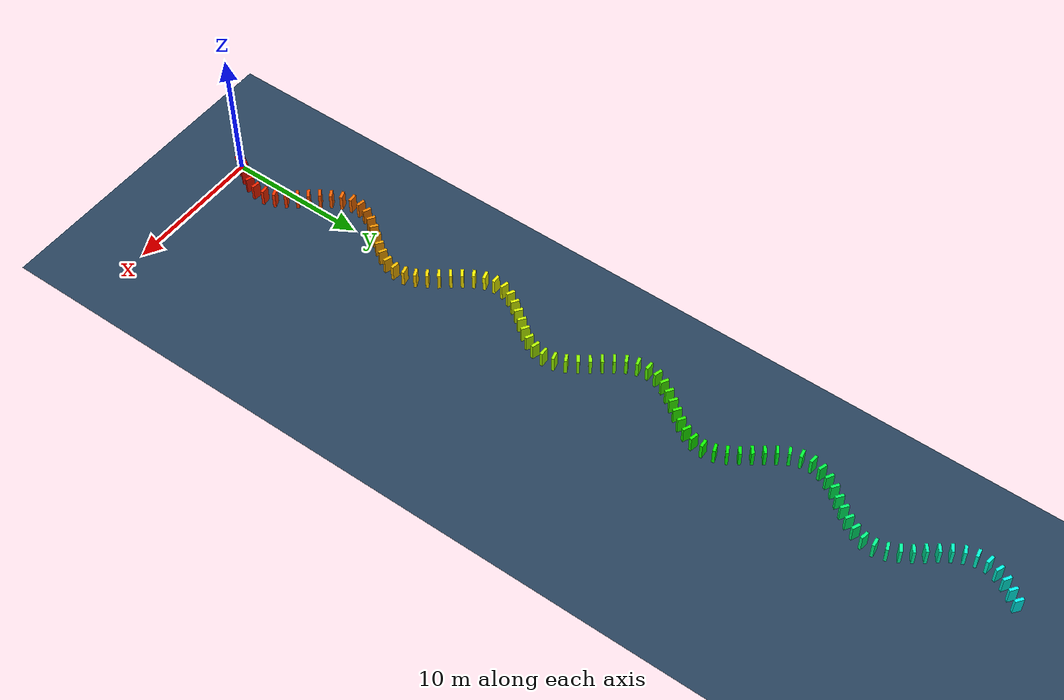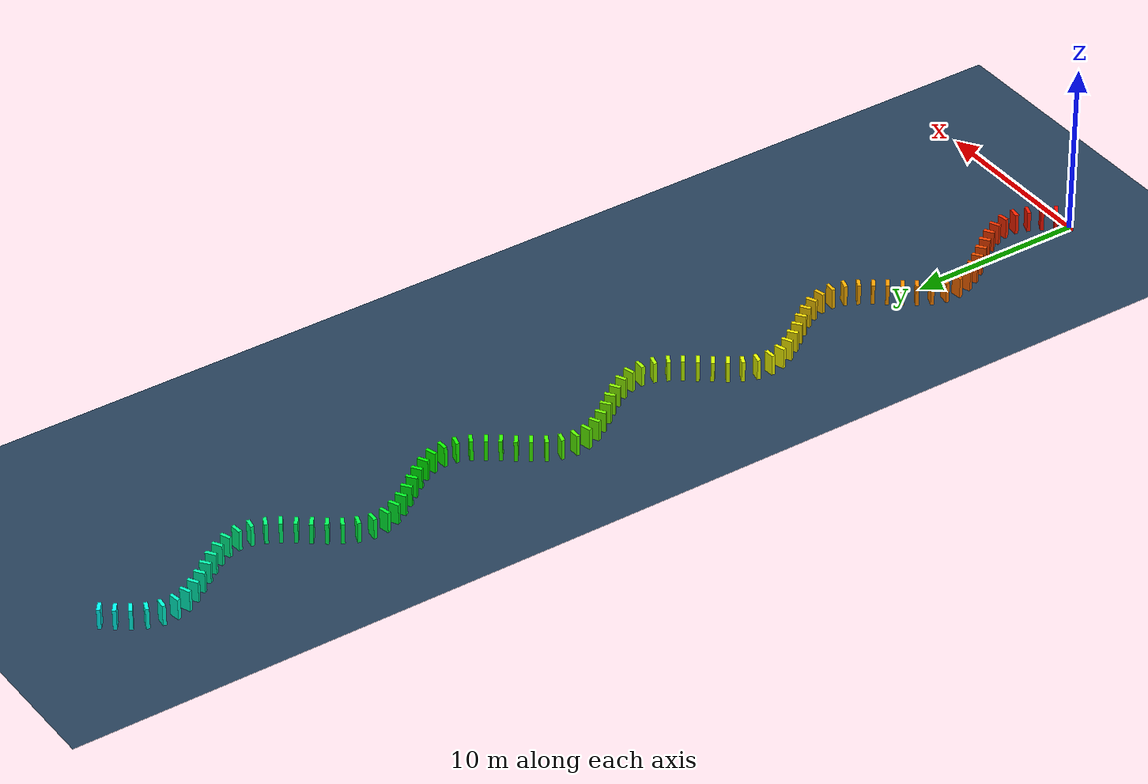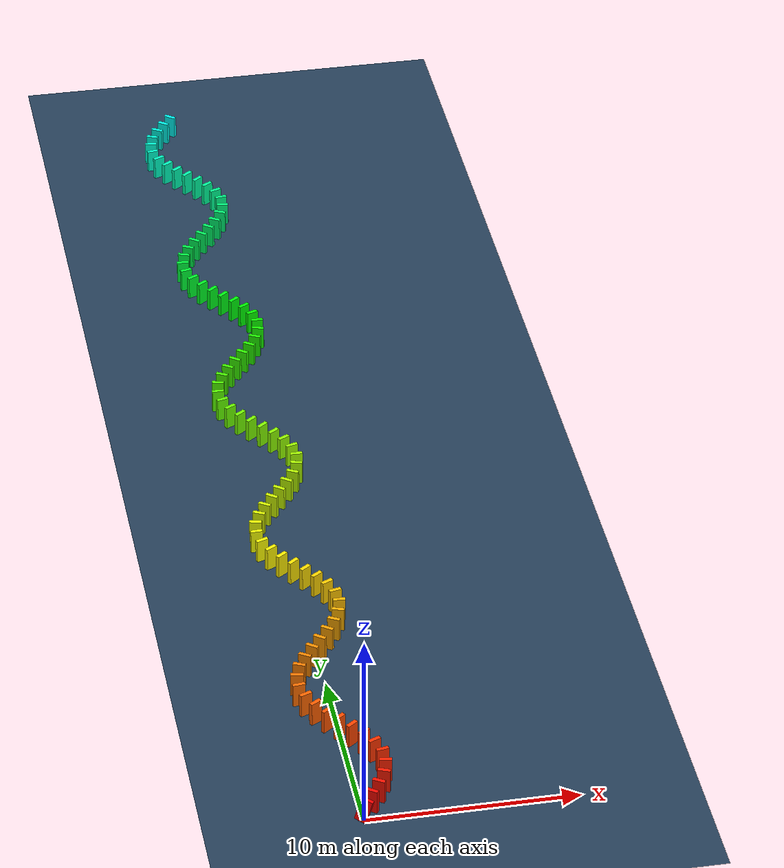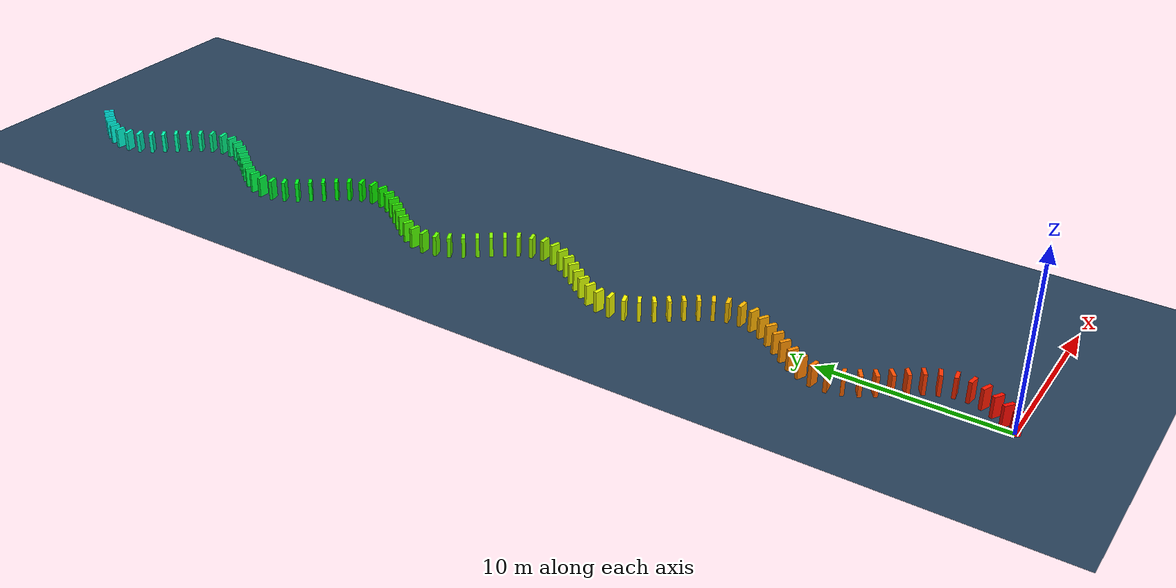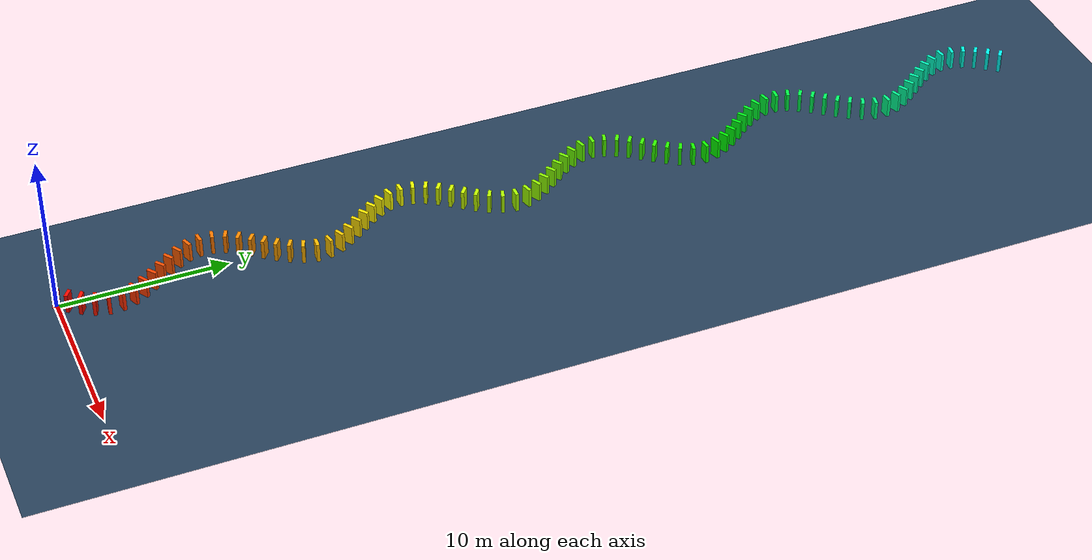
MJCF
<mujoco>
  <visual>
    <headlight diffuse="0.6 0.6 0.6" ambient="0.1 0.1 0.1" specular="0 0 0"/>
    <rgba haze="0.15 0.25 0.35 1"/>
    <global azimuth="120" elevation="-20"/>
  </visual>
  <asset>
    <texture type="skybox" builtin="gradient" rgb1="0.3 0.5 0.7" rgb2="0 0 0" width="512" height="3072"/>
    <texture type="2d" name="groundplane" builtin="checker" mark="edge" rgb1="0.2 0.3 0.4" rgb2="0.1 0.2 0.3" markrgb="0.8 0.8 0.8" width="300" height="300"/>
    <material name="groundplane" texture="groundplane" texuniform="true" texrepeat="5 5" reflectance="0.2"/>
  </asset>
  <worldbody>
    <light pos="0 0 1.5" dir="0 0 -1" directional="true"/>
    <geom name="floor" size="0 0 0.05" type="plane" material="groundplane"/>
    <body pos="0.0000 0.0000 0.6000" euler="0 15.0 52.3">
      <geom type="box" size="0.1000 0.3000 0.6000" rgba="1.000 0.000 0.000 1"/>
      <freejoint/>
    </body>
    <body pos="0.4692 0.6076 0.6000" euler="0 0.0 53.8">
      <geom type="box" size="0.1000 0.3000 0.6000" rgba="1.000 0.034 0.000 1"/>
      <freejoint/>
    </body>
    <body pos="0.9064 1.2393 0.6000" euler="0 0.0 58.7">
      <geom type="box" size="0.1000 0.3000 0.6000" rgba="1.000 0.067 0.000 1"/>
      <freejoint/>
    </body>
    <body pos="1.2655 1.9177 0.6000" euler="0 0.0 68.1">
      <geom type="box" size="0.1000 0.3000 0.6000" rgba="1.000 0.101 0.000 1"/>
      <freejoint/>
    </body>
    <body pos="1.4756 2.6547 0.6000" euler="0 0.0 82.5">
      <geom type="box" size="0.1000 0.3000 0.6000" rgba="1.000 0.134 0.000 1"/>
      <freejoint/>
    </body>
    <body pos="1.4639 3.4199 0.6000" euler="0 0.0 99.1">
      <geom type="box" size="0.1000 0.3000 0.6000" rgba="1.000 0.168 0.000 1"/>
      <freejoint/>
    </body>
    <body pos="1.2355 4.1515 0.6000" euler="0 0.0 113.1">
      <geom type="box" size="0.1000 0.3000 0.6000" rgba="1.000 0.201 0.000 1"/>
      <freejoint/>
    </body>
    <body pos="0.8661 4.8245 0.6000" euler="0 0.0 122.0">
      <geom type="box" size="0.1000 0.3000 0.6000" rgba="1.000 0.235 0.000 1"/>
      <freejoint/>
    </body>
    <body pos="0.4240 5.4527 0.6000" euler="0 0.0 126.5">
      <geom type="box" size="0.1000 0.3000 0.6000" rgba="1.000 0.268 0.000 1"/>
      <freejoint/>
    </body>
    <body pos="-0.0470 6.0599 0.6000" euler="0 0.0 127.7">
      <geom type="box" size="0.1000 0.3000 0.6000" rgba="1.000 0.302 0.000 1"/>
      <freejoint/>
    </body>
    <body pos="-0.5150 6.6694 0.6000" euler="0 0.0 125.9">
      <geom type="box" size="0.1000 0.3000 0.6000" rgba="1.000 0.335 0.000 1"/>
      <freejoint/>
    </body>
    <body pos="-0.9469 7.3047 0.6000" euler="0 0.0 120.6">
      <geom type="box" size="0.1000 0.3000 0.6000" rgba="1.000 0.369 0.000 1"/>
      <freejoint/>
    </body>
    <body pos="-1.2947 7.9889 0.6000" euler="0 0.0 110.7">
      <geom type="box" size="0.1000 0.3000 0.6000" rgba="1.000 0.402 0.000 1"/>
      <freejoint/>
    </body>
    <body pos="-1.4851 8.7310 0.6000" euler="0 0.0 95.9">
      <geom type="box" size="0.1000 0.3000 0.6000" rgba="1.000 0.436 0.000 1"/>
      <freejoint/>
    </body>
    <body pos="-1.4498 9.4955 0.6000" euler="0 0.0 79.3">
      <geom type="box" size="0.1000 0.3000 0.6000" rgba="1.000 0.469 0.000 1"/>
      <freejoint/>
    </body>
    <body pos="-1.2035 10.2215 0.6000" euler="0 0.0 65.8">
      <geom type="box" size="0.1000 0.3000 0.6000" rgba="1.000 0.503 0.000 1"/>
      <freejoint/>
    </body>
    <body pos="-0.8242 10.8890 0.6000" euler="0 0.0 57.4">
      <geom type="box" size="0.1000 0.3000 0.6000" rgba="1.000 0.536 0.000 1"/>
      <freejoint/>
    </body>
    <body pos="-0.3775 11.5141 0.6000" euler="0 0.0 53.3">
      <geom type="box" size="0.1000 0.3000 0.6000" rgba="1.000 0.570 0.000 1"/>
      <freejoint/>
    </body>
    <body pos="0.0945 12.1204 0.6000" euler="0 0.0 52.4">
      <geom type="box" size="0.1000 0.3000 0.6000" rgba="1.000 0.603 0.000 1"/>
      <freejoint/>
    </body>
    <body pos="0.5605 12.7314 0.6000" euler="0 0.0 54.5">
      <geom type="box" size="0.1000 0.3000 0.6000" rgba="1.000 0.637 0.000 1"/>
      <freejoint/>
    </body>
    <body pos="0.9865 13.3707 0.6000" euler="0 0.0 60.2">
      <geom type="box" size="0.1000 0.3000 0.6000" rgba="1.000 0.670 0.000 1"/>
      <freejoint/>
    </body>
    <body pos="1.3222 14.0607 0.6000" euler="0 0.0 70.6">
      <geom type="box" size="0.1000 0.3000 0.6000" rgba="1.000 0.704 0.000 1"/>
      <freejoint/>
    </body>
    <body pos="1.4924 14.8076 0.6000" euler="0 0.0 85.8">
      <geom type="box" size="0.1000 0.3000 0.6000" rgba="1.000 0.737 0.000 1"/>
      <freejoint/>
    </body>
    <body pos="1.4335 15.5707 0.6000" euler="0 0.0 102.3">
      <geom type="box" size="0.1000 0.3000 0.6000" rgba="1.000 0.771 0.000 1"/>
      <freejoint/>
    </body>
    <body pos="1.1702 16.2908 0.6000" euler="0 0.0 115.2">
      <geom type="box" size="0.1000 0.3000 0.6000" rgba="1.000 0.804 0.000 1"/>
      <freejoint/>
    </body>
    <body pos="0.7817 16.9531 0.6000" euler="0 0.0 123.2">
      <geom type="box" size="0.1000 0.3000 0.6000" rgba="1.000 0.838 0.000 1"/>
      <freejoint/>
    </body>
    <body pos="0.3309 17.5752 0.6000" euler="0 0.0 127.0">
      <geom type="box" size="0.1000 0.3000 0.6000" rgba="1.000 0.872 0.000 1"/>
      <freejoint/>
    </body>
    <body pos="-0.1419 18.1810 0.6000" euler="0 0.0 127.5">
      <geom type="box" size="0.1000 0.3000 0.6000" rgba="1.000 0.905 0.000 1"/>
      <freejoint/>
    </body>
    <body pos="-0.6056 18.7937 0.6000" euler="0 0.0 125.1">
      <geom type="box" size="0.1000 0.3000 0.6000" rgba="1.000 0.939 0.000 1"/>
      <freejoint/>
    </body>
    <body pos="-1.0252 19.4371 0.6000" euler="0 0.0 119.0">
      <geom type="box" size="0.1000 0.3000 0.6000" rgba="1.000 0.972 0.000 1"/>
      <freejoint/>
    </body>
    <body pos="-1.3481 20.1332 0.6000" euler="0 0.0 108.1">
      <geom type="box" size="0.1000 0.3000 0.6000" rgba="0.994 1.000 0.000 1"/>
      <freejoint/>
    </body>
    <body pos="-1.4973 20.8844 0.6000" euler="0 0.0 92.5">
      <geom type="box" size="0.1000 0.3000 0.6000" rgba="0.961 1.000 0.000 1"/>
      <freejoint/>
    </body>
    <body pos="-1.4152 21.6454 0.6000" euler="0 0.0 76.2">
      <geom type="box" size="0.1000 0.3000 0.6000" rgba="0.927 1.000 0.000 1"/>
      <freejoint/>
    </body>
    <body pos="-1.1357 22.3596 0.6000" euler="0 0.0 63.7">
      <geom type="box" size="0.1000 0.3000 0.6000" rgba="0.894 1.000 0.000 1"/>
      <freejoint/>
    </body>
    <body pos="-0.7386 23.0168 0.6000" euler="0 0.0 56.3">
      <geom type="box" size="0.1000 0.3000 0.6000" rgba="0.860 1.000 0.000 1"/>
      <freejoint/>
    </body>
    <body pos="-0.2840 23.6362 0.6000" euler="0 0.0 52.9">
      <geom type="box" size="0.1000 0.3000 0.6000" rgba="0.827 1.000 0.000 1"/>
      <freejoint/>
    </body>
    <body pos="0.1893 24.2416 0.6000" euler="0 0.0 52.6">
      <geom type="box" size="0.1000 0.3000 0.6000" rgba="0.793 1.000 0.000 1"/>
      <freejoint/>
    </body>
    <body pos="0.6503 24.8563 0.6000" euler="0 0.0 55.3">
      <geom type="box" size="0.1000 0.3000 0.6000" rgba="0.760 1.000 0.000 1"/>
      <freejoint/>
    </body>
    <body pos="1.0630 25.5041 0.6000" euler="0 0.0 61.9">
      <geom type="box" size="0.1000 0.3000 0.6000" rgba="0.726 1.000 0.000 1"/>
      <freejoint/>
    </body>
    <body pos="1.3723 26.2062 0.6000" euler="0 0.0 73.3">
      <geom type="box" size="0.1000 0.3000 0.6000" rgba="0.693 1.000 0.000 1"/>
      <freejoint/>
    </body>
    <body pos="1.4997 26.9612 0.6000" euler="0 0.0 89.1">
      <geom type="box" size="0.1000 0.3000 0.6000" rgba="0.659 1.000 0.000 1"/>
      <freejoint/>
    </body>
    <body pos="1.3948 27.7196 0.6000" euler="0 0.0 105.2">
      <geom type="box" size="0.1000 0.3000 0.6000" rgba="0.626 1.000 0.000 1"/>
      <freejoint/>
    </body>
    <body pos="1.1000 28.4277 0.6000" euler="0 0.0 117.2">
      <geom type="box" size="0.1000 0.3000 0.6000" rgba="0.592 1.000 0.000 1"/>
      <freejoint/>
    </body>
    <body pos="0.6949 29.0801 0.6000" euler="0 0.0 124.2">
      <geom type="box" size="0.1000 0.3000 0.6000" rgba="0.559 1.000 0.000 1"/>
      <freejoint/>
    </body>
    <body pos="0.2369 29.6971 0.6000" euler="0 0.0 127.3">
      <geom type="box" size="0.1000 0.3000 0.6000" rgba="0.525 1.000 0.000 1"/>
      <freejoint/>
    </body>
    <body pos="-0.2365 30.3023 0.6000" euler="0 0.0 127.3">
      <geom type="box" size="0.1000 0.3000 0.6000" rgba="0.492 1.000 0.000 1"/>
      <freejoint/>
    </body>
    <body pos="-0.6945 30.9193 0.6000" euler="0 0.0 124.2">
      <geom type="box" size="0.1000 0.3000 0.6000" rgba="0.458 1.000 0.000 1"/>
      <freejoint/>
    </body>
    <body pos="-1.0997 31.5717 0.6000" euler="0 0.0 117.2">
      <geom type="box" size="0.1000 0.3000 0.6000" rgba="0.425 1.000 0.000 1"/>
      <freejoint/>
    </body>
    <body pos="-1.3946 32.2798 0.6000" euler="0 0.0 105.3">
      <geom type="box" size="0.1000 0.3000 0.6000" rgba="0.391 1.000 0.000 1"/>
      <freejoint/>
    </body>
    <body pos="-1.4997 33.0382 0.6000" euler="0 0.0 89.2">
      <geom type="box" size="0.1000 0.3000 0.6000" rgba="0.358 1.000 0.000 1"/>
      <freejoint/>
    </body>
    <body pos="-1.3725 33.7932 0.6000" euler="0 0.0 73.3">
      <geom type="box" size="0.1000 0.3000 0.6000" rgba="0.324 1.000 0.000 1"/>
      <freejoint/>
    </body>
    <body pos="-1.0633 34.4953 0.6000" euler="0 0.0 61.9">
      <geom type="box" size="0.1000 0.3000 0.6000" rgba="0.291 1.000 0.000 1"/>
      <freejoint/>
    </body>
    <body pos="-0.6507 35.1431 0.6000" euler="0 0.0 55.3">
      <geom type="box" size="0.1000 0.3000 0.6000" rgba="0.257 1.000 0.000 1"/>
      <freejoint/>
    </body>
    <body pos="-0.1897 35.7578 0.6000" euler="0 0.0 52.6">
      <geom type="box" size="0.1000 0.3000 0.6000" rgba="0.223 1.000 0.000 1"/>
      <freejoint/>
    </body>
    <body pos="0.2835 36.3632 0.6000" euler="0 0.0 52.9">
      <geom type="box" size="0.1000 0.3000 0.6000" rgba="0.190 1.000 0.000 1"/>
      <freejoint/>
    </body>
    <body pos="0.7381 36.9826 0.6000" euler="0 0.0 56.3">
      <geom type="box" size="0.1000 0.3000 0.6000" rgba="0.156 1.000 0.000 1"/>
      <freejoint/>
    </body>
    <body pos="1.1354 37.6398 0.6000" euler="0 0.0 63.7">
      <geom type="box" size="0.1000 0.3000 0.6000" rgba="0.123 1.000 0.000 1"/>
      <freejoint/>
    </body>
    <body pos="1.4150 38.3540 0.6000" euler="0 0.0 76.2">
      <geom type="box" size="0.1000 0.3000 0.6000" rgba="0.089 1.000 0.000 1"/>
      <freejoint/>
    </body>
    <body pos="1.4973 39.1150 0.6000" euler="0 0.0 92.5">
      <geom type="box" size="0.1000 0.3000 0.6000" rgba="0.056 1.000 0.000 1"/>
      <freejoint/>
    </body>
    <body pos="1.3483 39.8662 0.6000" euler="0 0.0 108.1">
      <geom type="box" size="0.1000 0.3000 0.6000" rgba="0.022 1.000 0.000 1"/>
      <freejoint/>
    </body>
    <body pos="1.0255 40.5623 0.6000" euler="0 0.0 119.0">
      <geom type="box" size="0.1000 0.3000 0.6000" rgba="0.000 1.000 0.011 1"/>
      <freejoint/>
    </body>
    <body pos="0.6060 41.2057 0.6000" euler="0 0.0 125.1">
      <geom type="box" size="0.1000 0.3000 0.6000" rgba="0.000 1.000 0.045 1"/>
      <freejoint/>
    </body>
    <body pos="0.1424 41.8184 0.6000" euler="0 0.0 127.5">
      <geom type="box" size="0.1000 0.3000 0.6000" rgba="0.000 1.000 0.078 1"/>
      <freejoint/>
    </body>
    <body pos="-0.3304 42.4242 0.6000" euler="0 0.0 127.0">
      <geom type="box" size="0.1000 0.3000 0.6000" rgba="0.000 1.000 0.112 1"/>
      <freejoint/>
    </body>
    <body pos="-0.7813 43.0463 0.6000" euler="0 0.0 123.2">
      <geom type="box" size="0.1000 0.3000 0.6000" rgba="0.000 1.000 0.145 1"/>
      <freejoint/>
    </body>
    <body pos="-1.1699 43.7086 0.6000" euler="0 0.0 115.3">
      <geom type="box" size="0.1000 0.3000 0.6000" rgba="0.000 1.000 0.179 1"/>
      <freejoint/>
    </body>
    <body pos="-1.4334 44.4287 0.6000" euler="0 0.0 102.3">
      <geom type="box" size="0.1000 0.3000 0.6000" rgba="0.000 1.000 0.212 1"/>
      <freejoint/>
    </body>
    <body pos="-1.4924 45.1918 0.6000" euler="0 0.0 85.8">
      <geom type="box" size="0.1000 0.3000 0.6000" rgba="0.000 1.000 0.246 1"/>
      <freejoint/>
    </body>
    <body pos="-1.3225 45.9387 0.6000" euler="0 0.0 70.6">
      <geom type="box" size="0.1000 0.3000 0.6000" rgba="0.000 1.000 0.279 1"/>
      <freejoint/>
    </body>
    <body pos="-0.9868 46.6287 0.6000" euler="0 0.0 60.2">
      <geom type="box" size="0.1000 0.3000 0.6000" rgba="0.000 1.000 0.313 1"/>
      <freejoint/>
    </body>
    <body pos="-0.5609 47.2680 0.6000" euler="0 0.0 54.5">
      <geom type="box" size="0.1000 0.3000 0.6000" rgba="0.000 1.000 0.346 1"/>
      <freejoint/>
    </body>
    <body pos="-0.0950 47.8790 0.6000" euler="0 0.0 52.4">
      <geom type="box" size="0.1000 0.3000 0.6000" rgba="0.000 1.000 0.380 1"/>
      <freejoint/>
    </body>
    <body pos="0.3771 48.4853 0.6000" euler="0 0.0 53.3">
      <geom type="box" size="0.1000 0.3000 0.6000" rgba="0.000 1.000 0.413 1"/>
      <freejoint/>
    </body>
    <body pos="0.8238 49.1104 0.6000" euler="0 0.0 57.4">
      <geom type="box" size="0.1000 0.3000 0.6000" rgba="0.000 1.000 0.447 1"/>
      <freejoint/>
    </body>
    <body pos="1.2032 49.7779 0.6000" euler="0 0.0 65.8">
      <geom type="box" size="0.1000 0.3000 0.6000" rgba="0.000 1.000 0.480 1"/>
      <freejoint/>
    </body>
    <body pos="1.4497 50.5039 0.6000" euler="0 0.0 79.3">
      <geom type="box" size="0.1000 0.3000 0.6000" rgba="0.000 1.000 0.514 1"/>
      <freejoint/>
    </body>
    <body pos="1.4852 51.2684 0.6000" euler="0 0.0 95.9">
      <geom type="box" size="0.1000 0.3000 0.6000" rgba="0.000 1.000 0.547 1"/>
      <freejoint/>
    </body>
    <body pos="1.2949 52.0105 0.6000" euler="0 0.0 110.7">
      <geom type="box" size="0.1000 0.3000 0.6000" rgba="0.000 1.000 0.581 1"/>
      <freejoint/>
    </body>
    <body pos="0.9472 52.6947 0.6000" euler="0 0.0 120.6">
      <geom type="box" size="0.1000 0.3000 0.6000" rgba="0.000 1.000 0.615 1"/>
      <freejoint/>
    </body>
    <body pos="0.5155 53.3300 0.6000" euler="0 0.0 125.9">
      <geom type="box" size="0.1000 0.3000 0.6000" rgba="0.000 1.000 0.648 1"/>
      <freejoint/>
    </body>
    <body pos="0.0475 53.9395 0.6000" euler="0 0.0 127.7">
      <geom type="box" size="0.1000 0.3000 0.6000" rgba="0.000 1.000 0.682 1"/>
      <freejoint/>
    </body>
    <body pos="-0.4235 54.5467 0.6000" euler="0 0.0 126.5">
      <geom type="box" size="0.1000 0.3000 0.6000" rgba="0.000 1.000 0.715 1"/>
      <freejoint/>
    </body>
    <body pos="-0.8657 55.1749 0.6000" euler="0 0.0 122.0">
      <geom type="box" size="0.1000 0.3000 0.6000" rgba="0.000 1.000 0.749 1"/>
      <freejoint/>
    </body>
    <body pos="-1.2352 55.8479 0.6000" euler="0 0.0 113.1">
      <geom type="box" size="0.1000 0.3000 0.6000" rgba="0.000 1.000 0.782 1"/>
      <freejoint/>
    </body>
    <body pos="-1.4638 56.5795 0.6000" euler="0 0.0 99.1">
      <geom type="box" size="0.1000 0.3000 0.6000" rgba="0.000 1.000 0.816 1"/>
      <freejoint/>
    </body>
    <body pos="-1.4756 57.3447 0.6000" euler="0 0.0 82.5">
      <geom type="box" size="0.1000 0.3000 0.6000" rgba="0.000 1.000 0.849 1"/>
      <freejoint/>
    </body>
    <body pos="-1.2658 58.0817 0.6000" euler="0 0.0 68.1">
      <geom type="box" size="0.1000 0.3000 0.6000" rgba="0.000 1.000 0.883 1"/>
      <freejoint/>
    </body>
    <body pos="-0.9068 58.7601 0.6000" euler="0 0.0 58.7">
      <geom type="box" size="0.1000 0.3000 0.6000" rgba="0.000 1.000 0.916 1"/>
      <freejoint/>
    </body>
    <body pos="-0.4696 59.3918 0.6000" euler="0 0.0 53.8">
      <geom type="box" size="0.1000 0.3000 0.6000" rgba="0.000 1.000 0.950 1"/>
      <freejoint/>
    </body>
    <body pos="-0.0000 60.0000 0.6000" euler="0 0.0 52.3">
      <geom type="box" size="0.1000 0.3000 0.6000" rgba="0.000 1.000 0.983 1"/>
      <freejoint/>
    </body>
  </worldbody>
</mujoco>
